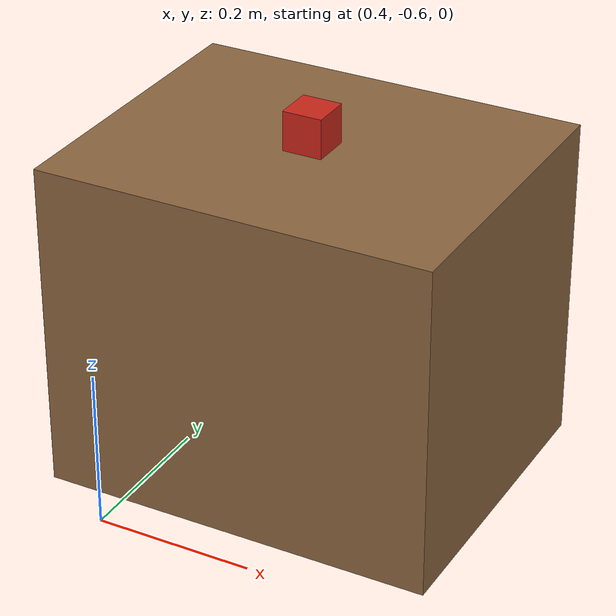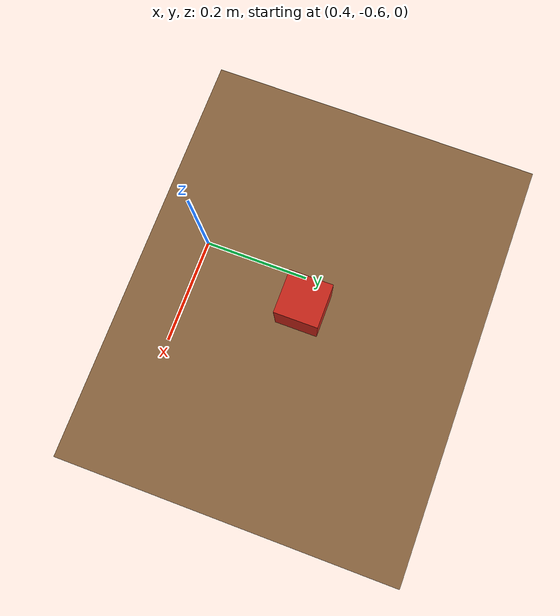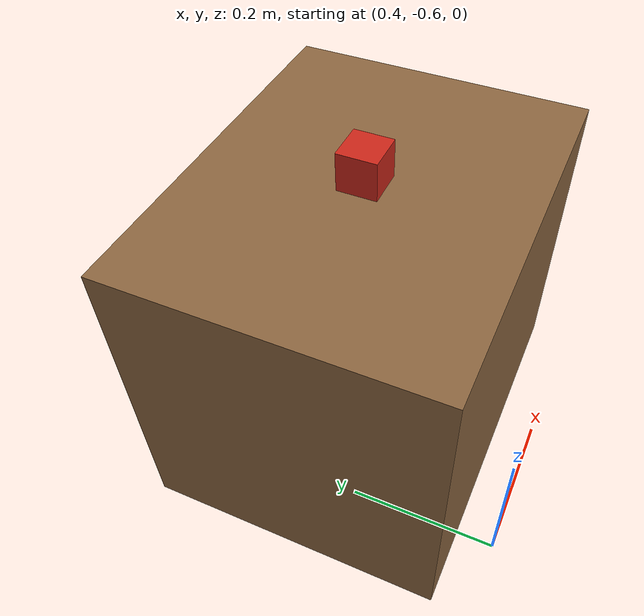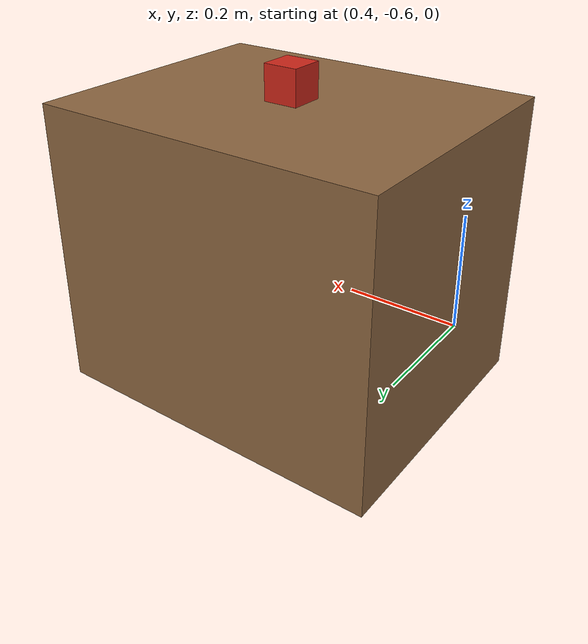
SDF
<?xml version="1.0"?>
<sdf version="1.10">
  <world name="pr2_reference_objects">
    <model name="graspable_object_table">
      <static>true</static>
      <pose>0.55 -0.35 0.21 0 0 0</pose>
      <link name="link">
        <collision name="collision">
          <geometry><box><size>0.5 0.4 0.42</size></box></geometry>
        </collision>
        <visual name="visual">
          <geometry><box><size>0.5 0.4 0.42</size></box></geometry>
          <material>
            <ambient>0.55 0.4 0.25 1</ambient>
            <diffuse>0.55 0.4 0.25 1</diffuse>
          </material>
        </visual>
      </link>
    </model>
    <model name="graspable_object">
      <static>true</static>
      <pose>0.55 -0.35 0.445 0 0 0</pose>
      <link name="body">
        <collision name="collision">
          <geometry><box><size>0.05 0.05 0.05</size></box></geometry>
        </collision>
        <visual name="visual">
          <geometry><box><size>0.05 0.05 0.05</size></box></geometry>
          <material>
            <ambient>0.8 0.15 0.1 1</ambient>
            <diffuse>0.8 0.15 0.1 1</diffuse>
          </material>
        </visual>
      </link>
    </model>
  </world>
</sdf>
